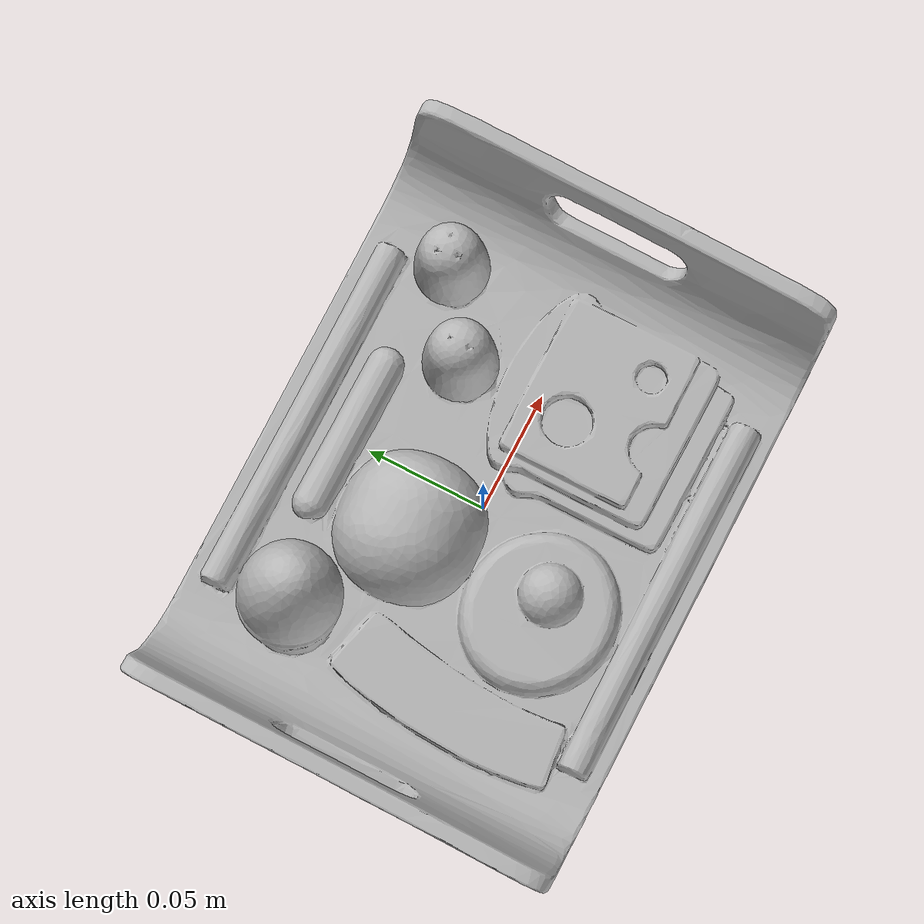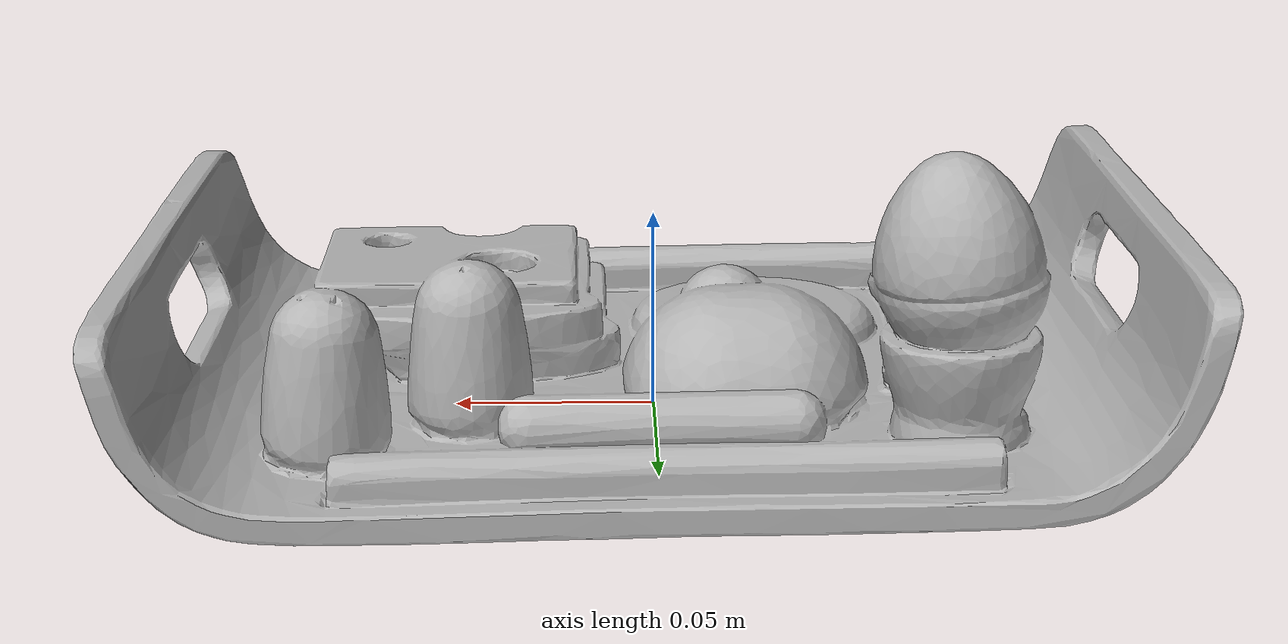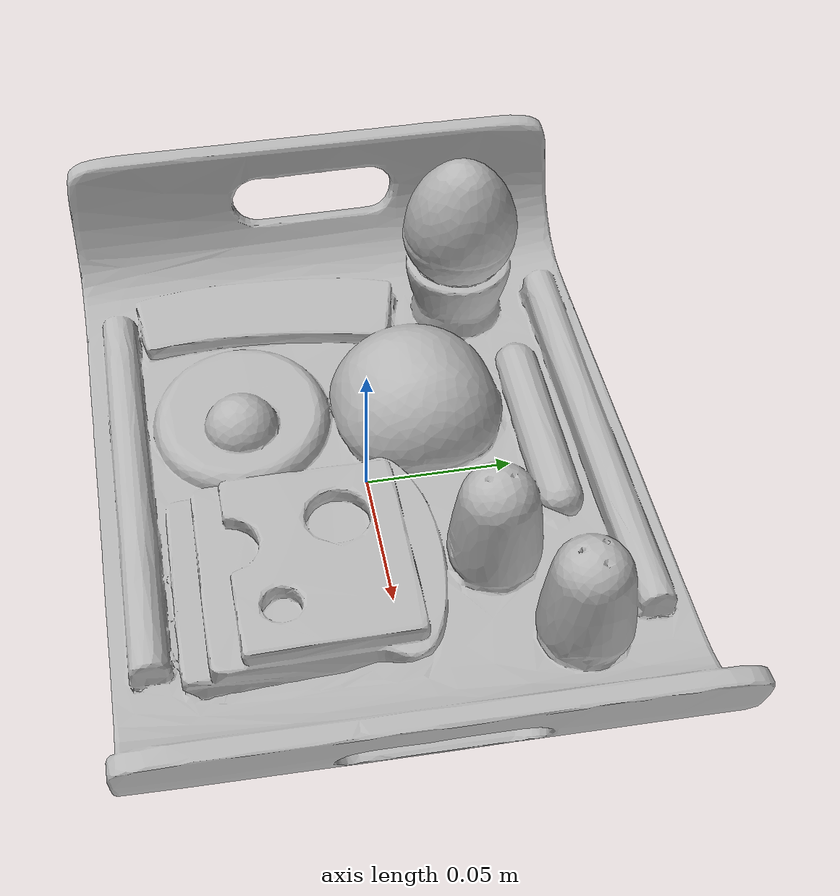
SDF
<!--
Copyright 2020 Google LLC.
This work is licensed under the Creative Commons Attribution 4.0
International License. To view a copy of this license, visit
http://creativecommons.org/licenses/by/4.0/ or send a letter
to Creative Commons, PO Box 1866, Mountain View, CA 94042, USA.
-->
<?xml version="1.0" ?>
<sdf version="1.11">
  <model name="breakfast_menu_decomposed">
    <link name="link_0">
      <inertial auto="true" />
      <visual name="visual">
        <geometry>
          <mesh>
            <uri>meshes/model.obj</uri>
          </mesh>
        </geometry>
      </visual>
      <collision name="collision_0">
        <density>1000</density>
        <geometry>
          <mesh optimization="convex_decomposition">
            <convex_decomposition>
              <max_convex_hulls>32</max_convex_hulls>
              <voxel_resolution>800000</voxel_resolution>
            </convex_decomposition>
            <uri>meshes/model.obj</uri>
          </mesh>
        </geometry>
      </collision>
    </link>
  </model>
</sdf>
